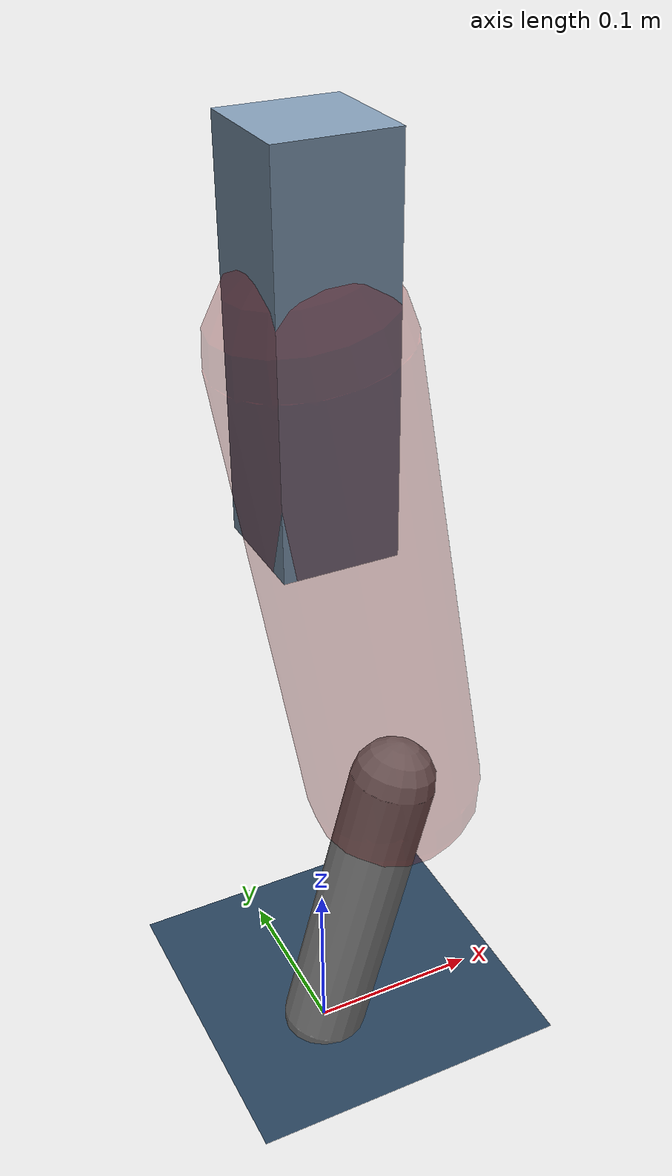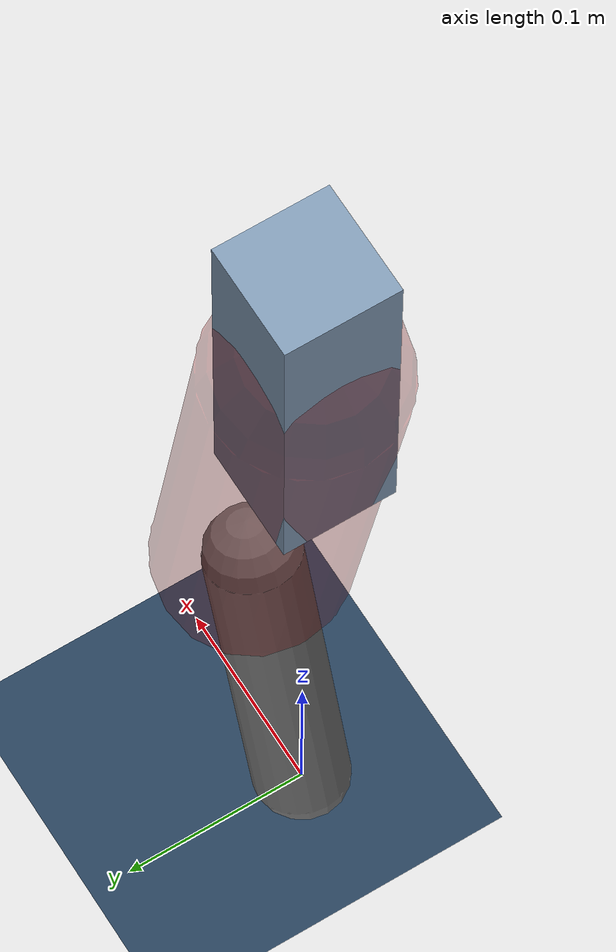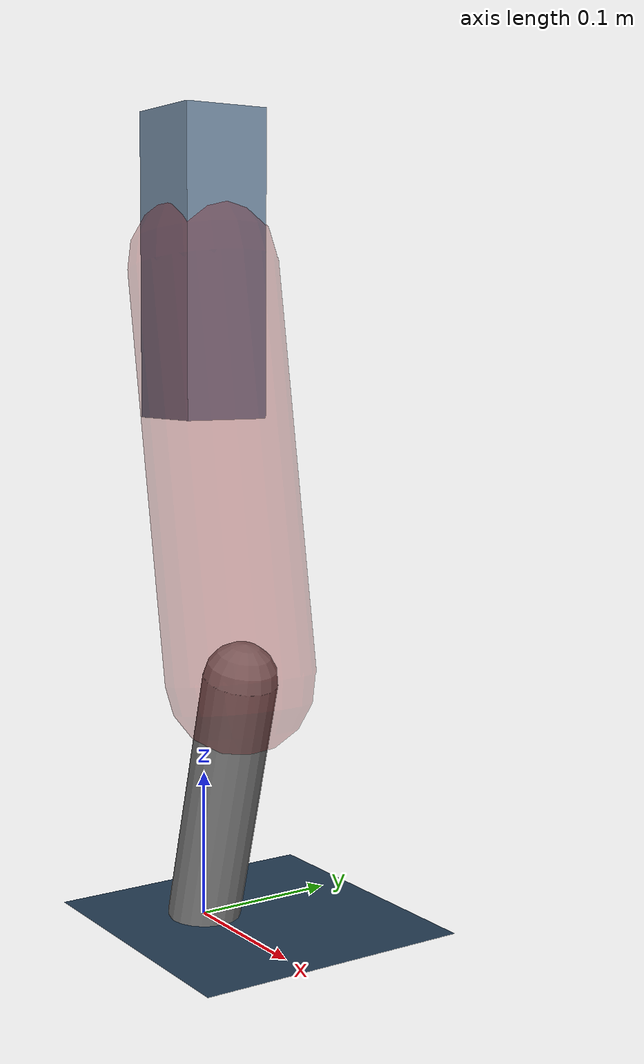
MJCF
<mujoco model="Hopper2D">
	<compiler inertiafromgeom="true" angle="radian" />
	<option timestep="0.001" integrator="implicit" cone="elliptic" solver="Newton" tolerance="1e-10" />

	<default>
		<geom contype="1" conaffinity="1" condim="3" friction="2 0.005 0.0001" solref="0.005 1" />
		<joint limited="true" damping="0.1" />
	</default>

	<asset>
		<texture name="skybox" type="skybox" builtin="gradient" rgb1=".4 .6 .8" rgb2="0 0 0" width="800" height="800" />
		<texture name="grid" type="2d" builtin="checker" rgb1=".1 .2 .3" rgb2=".2 .3 .4" width="300" height="300" mark="edge" markrgb=".2 .3 .4" />
		<material name="ground" texture="grid" texrepeat="1 1" texuniform="true" reflectance="0.1" />
		<material name="leg" rgba="0.5 0.6 0.7 1" />
	</asset>

	<worldbody>

		<geom name="floor" type="plane" size="5 5 0.25" material="ground" />

		<light directional="false" diffuse="0.8 0.8 0.8" specular="0.3 0.3 0.3" pos="0 0 2" dir="0 0 -1" />
		<light mode="targetbodycom" target="base" directional="false" diffuse="0.8 0.8 0.8" specular="0.3 0.3 0.3" pos="0 0 2" dir="0 0 -1" />

		<camera name="fixed" pos="0 -2 1" xyaxes="1 0 0 0 0 1" />
		<camera name="tracking" mode="trackcom" pos="0 -3 1" />

		<body name="root" pos="0 0 0.4431830709619775">
			<joint name="slide_x" type="slide" axis="1 0 0" range="-100 100" />
			<joint name="slide_z" type="slide" axis="0 0 1" range="0 10" />

			<body name="base" pos="0 0 0">
				<geom name="torso" type="box" size="0.03 0.03 0.1" mass="2.373" material="leg" />

				<body name="link1" pos="0 0 0" euler="0 1.400600964914814 0">
					<joint type="hinge" axis="0 -1 0" pos="0 0 0" name="hinge1" limited="true" range="-3.14 3.14" stiffness="0" damping="0.1" />
					<geom name="thigh" type="capsule" fromto="0 0 0 0.27322832119329143 0 0" size="0.05" rgba="0.5 0 0 0.3" mass="0.9171936351025577" />

					<body name="link2" pos="0.27322832119329143 0 0" euler="0 0.43028248373844324 0">
						<joint type="hinge" axis="0 -1 0" pos="0 0 0" name="hinge2" limited="true" range="-3.14 3.14" stiffness="0" damping="0.1" />
						<geom name="shank" type="capsule" fromto="0 0 0 0.17995474976868608 0 0" size="0.025" mass="0.3838592747918175" />

					</body>
				</body>
			</body>
		</body>
	</worldbody>

	<actuator>
		<motor name="torque1" joint="hinge1" ctrlrange="-70.55318524165791 70.55318524165791" ctrllimited="true" gear="1" />
		<motor name="torque2" joint="hinge2" ctrlrange="-95.76237030467529 95.76237030467529" ctrllimited="true" gear="1" />
	</actuator>
</mujoco>
